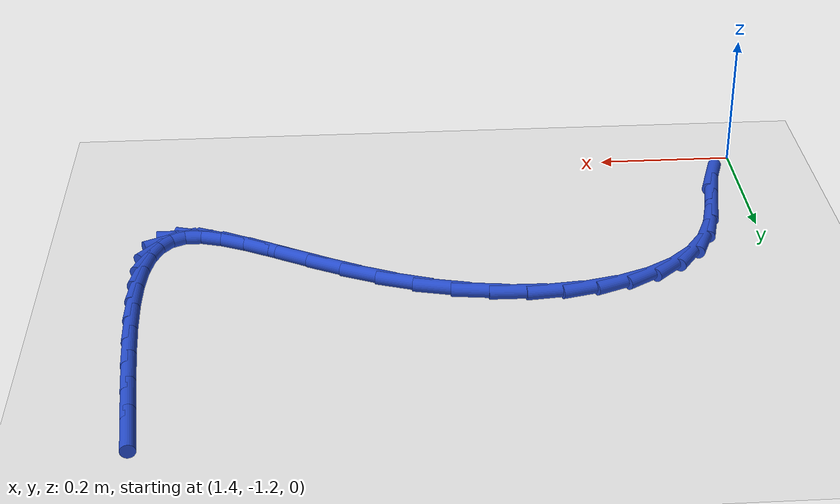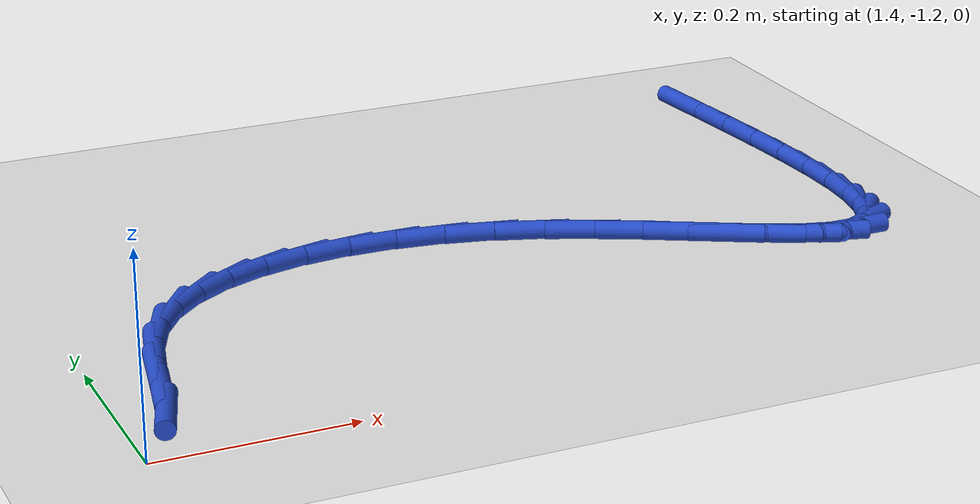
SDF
<sdf version="1.6">
 <world name="default">
  <model name="ground_plane">
   <static>1</static>
   <link name="link">
    <collision name="collision">
     <geometry><plane><normal>0 0 1</normal><size>100 100</size></plane></geometry>
     <surface><friction><ode><mu>100</mu><mu2>50</mu2></ode></friction></surface>
    </collision>
    <visual name="visual">
     <cast_shadows>0</cast_shadows>
     <geometry><plane><normal>0 0 1</normal><size>100 100</size></plane></geometry>
     <material>
      <script><uri>file://media/materials/scripts/gazebo.material</uri><name>Gazebo/WhiteGlow</name></script>
     </material>
    </visual>
   </link>
  </model>
  <model name="line">
   <link name="link_120">
    <pose>2.268281074232572 -0.5581043393667007 0.01 0 1.57 -1.4691241122167116</pose>
    <collision name="collision">
     <geometry><cylinder><radius>0.01</radius><length>0.08</length></cylinder></geometry>
    </collision>
    <visual name="visual">
     <material>
      <script><name>Gazebo/Blue</name><uri>file://media/materials/scripts/gazebo.material</uri></script>
     </material>
     <geometry><cylinder><radius>0.01</radius><length>0.08</length></cylinder></geometry>
    </visual>
   </link>
   <link name="link_121">
    <pose>2.274175207457532 -0.6158763624386224 0.01 0 1.57 -1.4730188687583</pose>
    <collision name="collision">
     <geometry><cylinder><radius>0.01</radius><length>0.08</length></cylinder></geometry>
    </collision>
    <visual name="visual">
     <material>
      <script><name>Gazebo/Blue</name><uri>file://media/materials/scripts/gazebo.material</uri></script>
     </material>
     <geometry><cylinder><radius>0.01</radius><length>0.08</length></cylinder></geometry>
    </visual>
   </link>
   <link name="link_122">
    <pose>2.2797574056362953 -0.6727851585402338 0.01 0 1.57 -1.484519033170088</pose>
    <collision name="collision">
     <geometry><cylinder><radius>0.01</radius><length>0.08</length></cylinder></geometry>
    </collision>
    <visual name="visual">
     <material>
      <script><name>Gazebo/Blue</name><uri>file://media/materials/scripts/gazebo.material</uri></script>
     </material>
     <geometry><cylinder><radius>0.01</radius><length>0.08</length></cylinder></geometry>
    </visual>
   </link>
   <link name="link_123">
    <pose>2.2845283161036436 -0.7279452885473414 0.01 0 1.57 -1.505014127251142</pose>
    <collision name="collision">
     <geometry><cylinder><radius>0.01</radius><length>0.08</length></cylinder></geometry>
    </collision>
    <visual name="visual">
     <material>
      <script><name>Gazebo/Blue</name><uri>file://media/materials/scripts/gazebo.material</uri></script>
     </material>
     <geometry><cylinder><radius>0.01</radius><length>0.08</length></cylinder></geometry>
    </visual>
   </link>
   <link name="link_124">
    <pose>2.2879885861943614 -0.7804713133357527 0.01 0 1.57 -1.537134377143229</pose>
    <collision name="collision">
     <geometry><cylinder><radius>0.01</radius><length>0.08</length></cylinder></geometry>
    </collision>
    <visual name="visual">
     <material>
      <script><name>Gazebo/Blue</name><uri>file://media/materials/scripts/gazebo.material</uri></script>
     </material>
     <geometry><cylinder><radius>0.01</radius><length>0.08</length></cylinder></geometry>
    </visual>
   </link>
   <link name="link_125">
    <pose>2.28963886324323 -0.8294777937812746 0.01 0 1.57 1.5560205739863384</pose>
    <collision name="collision">
     <geometry><cylinder><radius>0.01</radius><length>0.08</length></cylinder></geometry>
    </collision>
    <visual name="visual">
     <material>
      <script><name>Gazebo/Blue</name><uri>file://media/materials/scripts/gazebo.material</uri></script>
     </material>
     <geometry><cylinder><radius>0.01</radius><length>0.08</length></cylinder></geometry>
    </visual>
   </link>
   <link name="link_126">
    <pose>2.2889797945850328 -0.8740792907597144 0.01 0 1.57 1.4828105899127395</pose>
    <collision name="collision">
     <geometry><cylinder><radius>0.01</radius><length>0.08</length></cylinder></geometry>
    </collision>
    <visual name="visual">
     <material>
      <script><name>Gazebo/Blue</name><uri>file://media/materials/scripts/gazebo.material</uri></script>
     </material>
     <geometry><cylinder><radius>0.01</radius><length>0.08</length></cylinder></geometry>
    </visual>
   </link>
   <link name="link_127">
    <pose>2.2855120275545535 -0.9133903651468791 0.01 0 1.57 1.3690872561359944</pose>
    <collision name="collision">
     <geometry><cylinder><radius>0.01</radius><length>0.08</length></cylinder></geometry>
    </collision>
    <visual name="visual">
     <material>
      <script><name>Gazebo/Blue</name><uri>file://media/materials/scripts/gazebo.material</uri></script>
     </material>
     <geometry><cylinder><radius>0.01</radius><length>0.08</length></cylinder></geometry>
    </visual>
   </link>
   <link name="link_128">
    <pose>2.2787362094865746 -0.9465255778185763 0.01 0 1.57 1.185220008592925</pose>
    <collision name="collision">
     <geometry><cylinder><radius>0.01</radius><length>0.08</length></cylinder></geometry>
    </collision>
    <visual name="visual">
     <material>
      <script><name>Gazebo/Blue</name><uri>file://media/materials/scripts/gazebo.material</uri></script>
     </material>
     <geometry><cylinder><radius>0.01</radius><length>0.08</length></cylinder></geometry>
    </visual>
   </link>
   <link name="link_129">
    <pose>2.2681529877158786 -0.9725994896506125 0.01 0 1.57 0.8831316176833475</pose>
    <collision name="collision">
     <geometry><cylinder><radius>0.01</radius><length>0.08</length></cylinder></geometry>
    </collision>
    <visual name="visual">
     <material>
      <script><name>Gazebo/Blue</name><uri>file://media/materials/scripts/gazebo.material</uri></script>
     </material>
     <geometry><cylinder><radius>0.01</radius><length>0.08</length></cylinder></geometry>
    </visual>
   </link>
   <link name="link_130">
    <pose>2.253263009577248 -0.990726661518795 0.01 0 1.57 0.4409329710890777</pose>
    <collision name="collision">
     <geometry><cylinder><radius>0.01</radius><length>0.08</length></cylinder></geometry>
    </collision>
    <visual name="visual">
     <material>
      <script><name>Gazebo/Blue</name><uri>file://media/materials/scripts/gazebo.material</uri></script>
     </material>
     <geometry><cylinder><radius>0.01</radius><length>0.08</length></cylinder></geometry>
    </visual>
   </link>
   <link name="link_131">
    <pose>2.2335669224054664 -1.000021654298931 0.01 0 1.57 -0.00666249320935423</pose>
    <collision name="collision">
     <geometry><cylinder><radius>0.01</radius><length>0.08</length></cylinder></geometry>
    </collision>
    <visual name="visual">
     <material>
      <script><name>Gazebo/Blue</name><uri>file://media/materials/scripts/gazebo.material</uri></script>
     </material>
     <geometry><cylinder><radius>0.01</radius><length>0.08</length></cylinder></geometry>
    </visual>
   </link>
   <link name="link_132">
    <pose>2.2086612153013125 -0.9998557177392258 0.01 0 1.57 -0.278496346353768</pose>
    <collision name="collision">
     <geometry><cylinder><radius>0.01</radius><length>0.08</length></cylinder></geometry>
    </collision>
    <visual name="visual">
     <material>
      <script><name>Gazebo/Blue</name><uri>file://media/materials/scripts/gazebo.material</uri></script>
     </material>
     <geometry><cylinder><radius>0.01</radius><length>0.08</length></cylinder></geometry>
    </visual>
   </link>
   <link name="link_133">
    <pose>2.1787816935147015 -0.991312354484345 0.01 0 1.57 -0.41499543044609805</pose>
    <collision name="collision">
     <geometry><cylinder><radius>0.01</radius><length>0.08</length></cylinder></geometry>
    </collision>
    <visual name="visual">
     <material>
      <script><name>Gazebo/Blue</name><uri>file://media/materials/scripts/gazebo.material</uri></script>
     </material>
     <geometry><cylinder><radius>0.01</radius><length>0.08</length></cylinder></geometry>
    </visual>
   </link>
   <link name="link_134">
    <pose>2.1444257653898053 -0.9761757074747885 0.01 0 1.57 -0.47972322711265913</pose>
    <collision name="collision">
     <geometry><cylinder><radius>0.01</radius><length>0.08</length></cylinder></geometry>
    </collision>
    <visual name="visual">
     <material>
      <script><name>Gazebo/Blue</name><uri>file://media/materials/scripts/gazebo.material</uri></script>
     </material>
     <geometry><cylinder><radius>0.01</radius><length>0.08</length></cylinder></geometry>
    </visual>
   </link>
   <link name="link_135">
    <pose>2.106091623983028 -0.9562320213120197 0.01 0 1.57 -0.5022314300874327</pose>
    <collision name="collision">
     <geometry><cylinder><radius>0.01</radius><length>0.08</length></cylinder></geometry>
    </collision>
    <visual name="visual">
     <material>
      <script><name>Gazebo/Blue</name><uri>file://media/materials/scripts/gazebo.material</uri></script>
     </material>
     <geometry><cylinder><radius>0.01</radius><length>0.08</length></cylinder></geometry>
    </visual>
   </link>
   <link name="link_136">
    <pose>2.064277462350774 -0.9332675405975018 0.01 0 1.57 -0.49529220161620285</pose>
    <collision name="collision">
     <geometry><cylinder><radius>0.01</radius><length>0.08</length></cylinder></geometry>
    </collision>
    <visual name="visual">
     <material>
      <script><name>Gazebo/Blue</name><uri>file://media/materials/scripts/gazebo.material</uri></script>
     </material>
     <geometry><cylinder><radius>0.01</radius><length>0.08</length></cylinder></geometry>
    </visual>
   </link>
   <link name="link_137">
    <pose>2.0194814735494475 -0.9090685099326986 0.01 0 1.57 -0.46377492097397127</pose>
    <collision name="collision">
     <geometry><cylinder><radius>0.01</radius><length>0.08</length></cylinder></geometry>
    </collision>
    <visual name="visual">
     <material>
      <script><name>Gazebo/Blue</name><uri>file://media/materials/scripts/gazebo.material</uri></script>
     </material>
     <geometry><cylinder><radius>0.01</radius><length>0.08</length></cylinder></geometry>
    </visual>
   </link>
   <link name="link_138">
    <pose>1.9722018506354537 -0.8854211739190734 0.01 0 1.57 -0.4082446119675862</pose>
    <collision name="collision">
     <geometry><cylinder><radius>0.01</radius><length>0.08</length></cylinder></geometry>
    </collision>
    <visual name="visual">
     <material>
      <script><name>Gazebo/Blue</name><uri>file://media/materials/scripts/gazebo.material</uri></script>
     </material>
     <geometry><cylinder><radius>0.01</radius><length>0.08</length></cylinder></geometry>
    </visual>
   </link>
   <link name="link_139">
    <pose>1.922936786665198 -0.8641117771580906 0.01 0 1.57 -0.3266591171055657</pose>
    <collision name="collision">
     <geometry><cylinder><radius>0.01</radius><length>0.08</length></cylinder></geometry>
    </collision>
    <visual name="visual">
     <material>
      <script><name>Gazebo/Blue</name><uri>file://media/materials/scripts/gazebo.material</uri></script>
     </material>
     <geometry><cylinder><radius>0.01</radius><length>0.08</length></cylinder></geometry>
    </visual>
   </link>
   <link name="link_140">
    <pose>1.8721867413505477 -0.8469178508915568 0.01 0 1.57 -0.22668060058082404</pose>
    <collision name="collision">
     <geometry><cylinder><radius>0.01</radius><length>0.08</length></cylinder></geometry>
    </collision>
    <visual name="visual">
     <material>
      <script><name>Gazebo/Blue</name><uri>file://media/materials/scripts/gazebo.material</uri></script>
     </material>
     <geometry><cylinder><radius>0.01</radius><length>0.08</length></cylinder></geometry>
    </visual>
   </link>
   <link name="link_141">
    <pose>1.8206071218097823 -0.8350212855584951 0.01 0 1.57 -0.12334763917397486</pose>
    <collision name="collision">
     <geometry><cylinder><radius>0.01</radius><length>0.08</length></cylinder></geometry>
    </collision>
    <visual name="visual">
     <material>
      <script><name>Gazebo/Blue</name><uri>file://media/materials/scripts/gazebo.material</uri></script>
     </material>
     <geometry><cylinder><radius>0.01</radius><length>0.08</length></cylinder></geometry>
    </visual>
   </link>
   <link name="link_142">
    <pose>1.76910508299909 -0.8286362155848028 0.01 0 1.57 -0.014814806800039635</pose>
    <collision name="collision">
     <geometry><cylinder><radius>0.01</radius><length>0.08</length></cylinder></geometry>
    </collision>
    <visual name="visual">
     <material>
      <script><name>Gazebo/Blue</name><uri>file://media/materials/scripts/gazebo.material</uri></script>
     </material>
     <geometry><cylinder><radius>0.01</radius><length>0.08</length></cylinder></geometry>
    </visual>
   </link>
   <link name="link_143">
    <pose>1.7186108478928173 -0.8278880985145158 0.01 0 1.57 0.1029030516249445</pose>
    <collision name="collision">
     <geometry><cylinder><radius>0.01</radius><length>0.08</length></cylinder></geometry>
    </collision>
    <visual name="visual">
     <material>
      <script><name>Gazebo/Blue</name><uri>file://media/materials/scripts/gazebo.material</uri></script>
     </material>
     <geometry><cylinder><radius>0.01</radius><length>0.08</length></cylinder></geometry>
    </visual>
   </link>
   <link name="link_144">
    <pose>1.6700546394653104 -0.8329023918916691 0.01 0 1.57 0.23424181577951508</pose>
    <collision name="collision">
     <geometry><cylinder><radius>0.01</radius><length>0.08</length></cylinder></geometry>
    </collision>
    <visual name="visual">
     <material>
      <script><name>Gazebo/Blue</name><uri>file://media/materials/scripts/gazebo.material</uri></script>
     </material>
     <geometry><cylinder><radius>0.01</radius><length>0.08</length></cylinder></geometry>
    </visual>
   </link>
   <link name="link_145">
    <pose>1.6243666806909156 -0.843804553260298 0.01 0 1.57 0.3837884578268224</pose>
    <collision name="collision">
     <geometry><cylinder><radius>0.01</radius><length>0.08</length></cylinder></geometry>
    </collision>
    <visual name="visual">
     <material>
      <script><name>Gazebo/Blue</name><uri>file://media/materials/scripts/gazebo.material</uri></script>
     </material>
     <geometry><cylinder><radius>0.01</radius><length>0.08</length></cylinder></geometry>
    </visual>
   </link>
   <link name="link_146">
    <pose>1.582477194543978 -0.8607200401644376 0.01 0 1.57 0.5552790818148408</pose>
    <collision name="collision">
     <geometry><cylinder><radius>0.01</radius><length>0.08</length></cylinder></geometry>
    </collision>
    <visual name="visual">
     <material>
      <script><name>Gazebo/Blue</name><uri>file://media/materials/scripts/gazebo.material</uri></script>
     </material>
     <geometry><cylinder><radius>0.01</radius><length>0.08</length></cylinder></geometry>
    </visual>
   </link>
   <link name="link_147">
    <pose>1.5453164039988434 -0.8837743101481232 0.01 0 1.57 0.7495150582254785</pose>
    <collision name="collision">
     <geometry><cylinder><radius>0.01</radius><length>0.08</length></cylinder></geometry>
    </collision>
    <visual name="visual">
     <material>
      <script><name>Gazebo/Blue</name><uri>file://media/materials/scripts/gazebo.material</uri></script>
     </material>
     <geometry><cylinder><radius>0.01</radius><length>0.08</length></cylinder></geometry>
    </visual>
   </link>
   <link name="link_148">
    <pose>1.513814532029858 -0.9130928207553901 0.01 0 1.57 0.961632359674914</pose>
    <collision name="collision">
     <geometry><cylinder><radius>0.01</radius><length>0.08</length></cylinder></geometry>
    </collision>
    <visual name="visual">
     <material>
      <script><name>Gazebo/Blue</name><uri>file://media/materials/scripts/gazebo.material</uri></script>
     </material>
     <geometry><cylinder><radius>0.01</radius><length>0.08</length></cylinder></geometry>
    </visual>
   </link>
   <link name="link_149">
    <pose>1.4889018016113678 -0.9488010295302733 0.01 0 1.57 1.1726971678244016</pose>
    <collision name="collision">
     <geometry><cylinder><radius>0.01</radius><length>0.08</length></cylinder></geometry>
    </collision>
    <visual name="visual">
     <material>
      <script><name>Gazebo/Blue</name><uri>file://media/materials/scripts/gazebo.material</uri></script>
     </material>
     <geometry><cylinder><radius>0.01</radius><length>0.08</length></cylinder></geometry>
    </visual>
   </link>
   <link name="link_150">
    <pose>1.4712500187697706 -0.9907736809010493 0.01 0 1.57 1.31479472724028</pose>
    <collision name="collision">
     <geometry><cylinder><radius>0.01</radius><length>0.08</length></cylinder></geometry>
    </collision>
    <visual name="visual">
     <material>
      <script><name>Gazebo/Blue</name><uri>file://media/materials/scripts/gazebo.material</uri></script>
     </material>
     <geometry><cylinder><radius>0.01</radius><length>0.08</length></cylinder></geometry>
    </visual>
   </link>
   <link name="link_151">
    <pose>1.4592390248749332 -1.0366618818572992 0.01 0 1.57 1.3748458773566592</pose>
    <collision name="collision">
     <geometry><cylinder><radius>0.01</radius><length>0.08</length></cylinder></geometry>
    </collision>
    <visual name="visual">
     <material>
      <script><name>Gazebo/Blue</name><uri>file://media/materials/scripts/gazebo.material</uri></script>
     </material>
     <geometry><cylinder><radius>0.01</radius><length>0.08</length></cylinder></geometry>
    </visual>
   </link>
   <link name="link_152">
    <pose>1.4500501606530076 -1.082953968010755 0.01 0 1.57 1.3609377631313349</pose>
    <collision name="collision">
     <geometry><cylinder><radius>0.01</radius><length>0.08</length></cylinder></geometry>
    </collision>
    <visual name="visual">
     <material>
      <script><name>Gazebo/Blue</name><uri>file://media/materials/scripts/gazebo.material</uri></script>
     </material>
     <geometry><cylinder><radius>0.01</radius><length>0.08</length></cylinder></geometry>
    </visual>
   </link>
   <link name="link_153">
    <pose>1.4408542999498217 -1.126128120127657 0.01 0 1.57 1.2526503786661751</pose>
    <collision name="collision">
     <geometry><cylinder><radius>0.01</radius><length>0.08</length></cylinder></geometry>
    </collision>
    <visual name="visual">
     <material>
      <script><name>Gazebo/Blue</name><uri>file://media/materials/scripts/gazebo.material</uri></script>
     </material>
     <geometry><cylinder><radius>0.01</radius><length>0.08</length></cylinder></geometry>
    </visual>
   </link>
  </model>
 </world>
</sdf>
